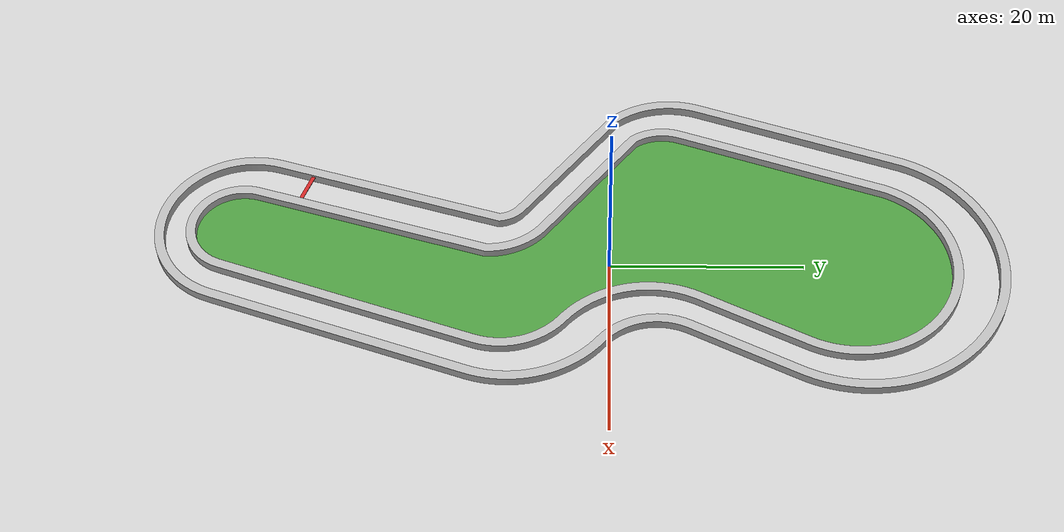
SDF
<sdf version="1.6">
 <world name="default">
  <light name="sun" type="directional">
   <pose>0 0 10 0 -0 0</pose>
   <diffuse>204 204 204 1</diffuse>
   <specular>51 51 51 1</specular>
   <attenuation>
    <range>1000</range>
    <constant>0.9</constant>
    <linear>0.01</linear>
    <quadratic>0.001</quadratic>
   </attenuation>
   <direction>-0.5 -0.5 -1</direction>
  </light>
  <physics name="default_physics" default="0" type="ode">
   <max_step_size>0.001</max_step_size>
   <real_time_factor>1</real_time_factor>
   <real_time_update_rate>1000</real_time_update_rate>
  </physics>
  <spherical_coordinates>
   <surface_model>EARTH_WGS84</surface_model>
   <latitude_deg>0</latitude_deg>
   <longitude_deg>0</longitude_deg>
   <elevation>0</elevation>
   <heading_deg>0</heading_deg>
  </spherical_coordinates>
  <gravity>0 0 -9.8</gravity>
  <magnetic_field>6e-06 2.3e-05 -4.2e-05</magnetic_field>
  <atmosphere type="adiabatic"/>
  <include><uri>model://ground</uri></include>
  <include><uri>model://grass1</uri><pose>0 0 0 1.57079632 0 0</pose></include>
  <include><uri>model://walll1</uri><pose>0 0 0.5 1.57079632 0 0</pose></include>
  <include><uri>model://wallr1</uri><pose>0 0 0 1.57079632 0 0</pose></include>
  <include><uri>model://redline</uri><pose>-9.6 -32 0.7 0 0 2.8</pose></include>
 </world>
</sdf>

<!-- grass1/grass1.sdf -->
<sdf version='1.6'>
  <model name="grass1">
    <static>true</static>
    <pose>0 0 0 0 0 0</pose>

    <link name="grass1">
      <pose>0 0 0 0 0 0</pose>
      <visual name="grass">
           <material>
            <script>
                <uri>model://grass1/materials/scripts</uri>
                <uri>model://grass1/materials/textures</uri>
                <name>vrc/grass</name>
            </script>
        </material>
        <geometry>
          <mesh>
            <uri>model://grass1/meshes/RT1_Grass.dae</uri>
          </mesh>
        </geometry>
      </visual>
      <collision name="grass">
        <geometry>
          <mesh>
            <uri>model://grass1/meshes/RT1_Grass.dae</uri>
          </mesh>
        </geometry>
      </collision>
    </link>

  </model>
</sdf>

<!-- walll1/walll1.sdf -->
<sdf version='1.6'>
  <model name="walll1">
    <static>true</static>
    <pose>0 0 0 0 0 0</pose>

    <link name="walll1">
      <pose>0 0 0 0 0 0</pose>
      <visual name="walll">
        <geometry>
          <mesh>
            <uri>model://walll1/meshes/RT1_Wall_O.dae</uri>
          </mesh>
        </geometry>
      </visual>
      <collision name="walll">
        <geometry>
          <mesh>
            <uri>model://walll1/meshes/RT1_Wall_O.dae</uri>
          </mesh>
        </geometry>
      </collision>
    </link>

  </model>
</sdf>

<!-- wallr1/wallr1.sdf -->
<sdf version='1.6'>
  <model name="wallr1">
    <static>true</static>
    <pose>0 0 0 0 0 0</pose>

    <link name="wallr1">
      <pose>0 0 0 0 0 0</pose>
      <visual name="wallr">
        <geometry>
          <mesh>
            <uri>model://wallr1/meshes/RT1_Wall_R.dae</uri>
          </mesh>
        </geometry>
      </visual>
      <collision name="wallr">
        <geometry>
          <mesh>
            <uri>model://wallr1/meshes/RT1_Wall_R.dae</uri>
          </mesh>
        </geometry>
      </collision>
    </link>

  </model>
</sdf>

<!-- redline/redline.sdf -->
<sdf version='1.6'>
  <model name="redline">
    <static>true</static>
    <pose>0 0 0 0 0 0</pose>

    <link name="redline">
      <pose>0 0 0 0 0 0</pose>
      <visual name="redline">
      <material>
            <script>
                <uri>model://redline/materials/scripts</uri>
                <uri>model://redline/materials/textures</uri>
                <name>vrc/redline</name>
            </script>
        </material>
        <geometry>
          <box>
            <size>3.5 0.4 0.1</size>
          </box>
        </geometry>
      </visual>
    </link>

  </model>
</sdf>
